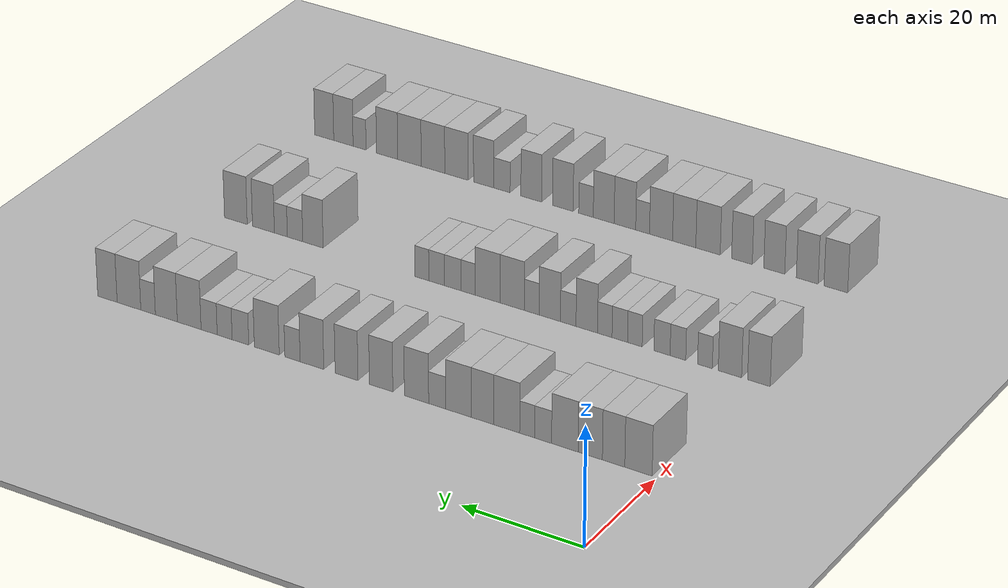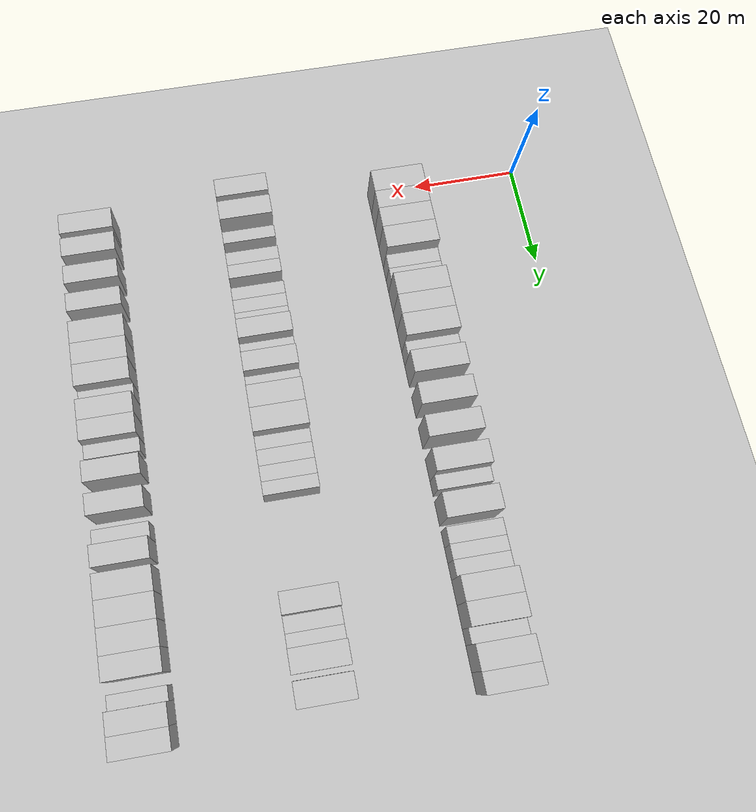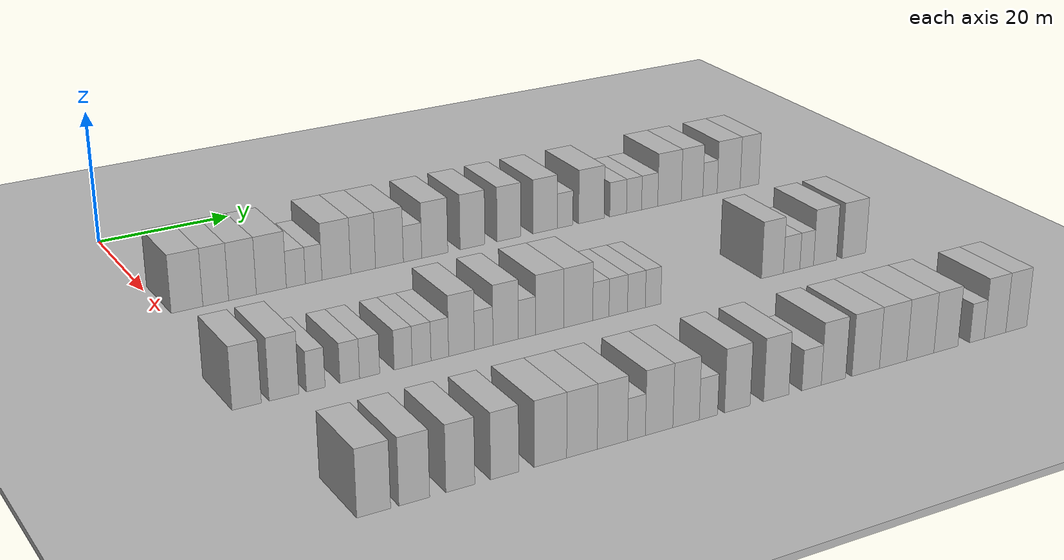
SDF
<sdf version="1.6">
 <world name="default">
  <include><name>ground_plane_1</name><uri>model://HANNAS_ground_plane</uri></include>
  <include>
   <name>ground_plane_2</name>
   <uri>model://HANNAS_ground_plane</uri>
   <pose>100 0 0  0 0 0</pose>
  </include>
  <model name="building_68">
   <static>1</static>
   <pose>25.0000 2.7188 0 0.000000 0.000000 0.000000</pose>
   <link name="link">
    <pose>0 0 4.50 0 0 0</pose>
    <collision name="collision"><geometry><box><size>10.0000 4.4867 9.0000</size></box></geometry></collision>
    <visual name="visual">
     <cast_shadows>0</cast_shadows>
     <geometry><box><size>10.0000 4.4867 9.0000</size></box></geometry>
     <material>
      <script>
       <uri>model://HANNAS_wall/materials/scripts</uri>
       <uri>model://HANNAS_wall/materials/textures</uri>
       <name>vrc/HANNAS_wall</name>
      </script>
     </material>
    </visual>
   </link>
  </model>
  <model name="building_69">
   <static>1</static>
   <pose>25.0000 6.8069 0 0.000000 0.000000 0.000000</pose>
   <link name="link">
    <pose>0 0 4.50 0 0 0</pose>
    <collision name="collision"><geometry><box><size>10.0000 3.6895 9.0000</size></box></geometry></collision>
    <visual name="visual">
     <cast_shadows>0</cast_shadows>
     <geometry><box><size>10.0000 3.6895 9.0000</size></box></geometry>
     <material>
      <script>
       <uri>model://HANNAS_wall/materials/scripts</uri>
       <uri>model://HANNAS_wall/materials/textures</uri>
       <name>vrc/HANNAS_wall</name>
      </script>
     </material>
    </visual>
   </link>
  </model>
  <model name="building_70">
   <static>1</static>
   <pose>25.0000 10.6622 0 0.000000 0.000000 0.000000</pose>
   <link name="link">
    <pose>0 0 4.50 0 0 0</pose>
    <collision name="collision"><geometry><box><size>10.0000 4.0211 9.0000</size></box></geometry></collision>
    <visual name="visual">
     <cast_shadows>0</cast_shadows>
     <geometry><box><size>10.0000 4.0211 9.0000</size></box></geometry>
     <material>
      <script>
       <uri>model://HANNAS_wall/materials/scripts</uri>
       <uri>model://HANNAS_wall/materials/textures</uri>
       <name>vrc/HANNAS_wall</name>
      </script>
     </material>
    </visual>
   </link>
  </model>
  <model name="building_71">
   <static>1</static>
   <pose>25.0000 14.8831 0 0.000000 0.000000 0.000000</pose>
   <link name="link">
    <pose>0 0 4.50 0 0 0</pose>
    <collision name="collision"><geometry><box><size>10.0000 4.4206 9.0000</size></box></geometry></collision>
    <visual name="visual">
     <cast_shadows>0</cast_shadows>
     <geometry><box><size>10.0000 4.4206 9.0000</size></box></geometry>
     <material>
      <script>
       <uri>model://HANNAS_wall/materials/scripts</uri>
       <uri>model://HANNAS_wall/materials/textures</uri>
       <name>vrc/HANNAS_wall</name>
      </script>
     </material>
    </visual>
   </link>
  </model>
  <model name="building_72">
   <static>1</static>
   <pose>25.0000 18.5226 0 0.000000 0.000000 0.000000</pose>
   <link name="link">
    <pose>0 0 3.00 0 0 0</pose>
    <collision name="collision"><geometry><box><size>10.0000 2.8583 6.0000</size></box></geometry></collision>
    <visual name="visual">
     <cast_shadows>0</cast_shadows>
     <geometry><box><size>10.0000 2.8583 6.0000</size></box></geometry>
     <material>
      <script>
       <uri>model://HANNAS_wall/materials/scripts</uri>
       <uri>model://HANNAS_wall/materials/textures</uri>
       <name>vrc/HANNAS_wall</name>
      </script>
     </material>
    </visual>
   </link>
  </model>
  <model name="building_73">
   <static>1</static>
   <pose>25.0000 21.1987 0 0.000000 0.000000 0.000000</pose>
   <link name="link">
    <pose>0 0 3.00 0 0 0</pose>
    <collision name="collision"><geometry><box><size>10.0000 2.4939 6.0000</size></box></geometry></collision>
    <visual name="visual">
     <cast_shadows>0</cast_shadows>
     <geometry><box><size>10.0000 2.4939 6.0000</size></box></geometry>
     <material>
      <script>
       <uri>model://HANNAS_wall/materials/scripts</uri>
       <uri>model://HANNAS_wall/materials/textures</uri>
       <name>vrc/HANNAS_wall</name>
      </script>
     </material>
    </visual>
   </link>
  </model>
  <model name="building_74">
   <static>1</static>
   <pose>25.0000 24.6305 0 0.000000 0.000000 0.000000</pose>
   <link name="link">
    <pose>0 0 4.50 0 0 0</pose>
    <collision name="collision"><geometry><box><size>10.0000 4.3699 9.0000</size></box></geometry></collision>
    <visual name="visual">
     <cast_shadows>0</cast_shadows>
     <geometry><box><size>10.0000 4.3699 9.0000</size></box></geometry>
     <material>
      <script>
       <uri>model://HANNAS_wall/materials/scripts</uri>
       <uri>model://HANNAS_wall/materials/textures</uri>
       <name>vrc/HANNAS_wall</name>
      </script>
     </material>
    </visual>
   </link>
  </model>
  <model name="building_75">
   <static>1</static>
   <pose>25.0000 28.7392 0 0.000000 0.000000 0.000000</pose>
   <link name="link">
    <pose>0 0 4.50 0 0 0</pose>
    <collision name="collision"><geometry><box><size>10.0000 3.8474 9.0000</size></box></geometry></collision>
    <visual name="visual">
     <cast_shadows>0</cast_shadows>
     <geometry><box><size>10.0000 3.8474 9.0000</size></box></geometry>
     <material>
      <script>
       <uri>model://HANNAS_wall/materials/scripts</uri>
       <uri>model://HANNAS_wall/materials/textures</uri>
       <name>vrc/HANNAS_wall</name>
      </script>
     </material>
    </visual>
   </link>
  </model>
  <model name="building_76">
   <static>1</static>
   <pose>25.0000 32.8448 0 0.000000 0.000000 0.000000</pose>
   <link name="link">
    <pose>0 0 4.50 0 0 0</pose>
    <collision name="collision"><geometry><box><size>10.0000 4.3639 9.0000</size></box></geometry></collision>
    <visual name="visual">
     <cast_shadows>0</cast_shadows>
     <geometry><box><size>10.0000 4.3639 9.0000</size></box></geometry>
     <material>
      <script>
       <uri>model://HANNAS_wall/materials/scripts</uri>
       <uri>model://HANNAS_wall/materials/textures</uri>
       <name>vrc/HANNAS_wall</name>
      </script>
     </material>
    </visual>
   </link>
  </model>
  <model name="building_77">
   <static>1</static>
   <pose>25.0000 36.4852 0 0.000000 0.000000 0.000000</pose>
   <link name="link">
    <pose>0 0 3.00 0 0 0</pose>
    <collision name="collision"><geometry><box><size>10.0000 2.9167 6.0000</size></box></geometry></collision>
    <visual name="visual">
     <cast_shadows>0</cast_shadows>
     <geometry><box><size>10.0000 2.9167 6.0000</size></box></geometry>
     <material>
      <script>
       <uri>model://HANNAS_wall/materials/scripts</uri>
       <uri>model://HANNAS_wall/materials/textures</uri>
       <name>vrc/HANNAS_wall</name>
      </script>
     </material>
    </visual>
   </link>
  </model>
  <model name="building_78">
   <static>1</static>
   <pose>25.0000 40.0395 0 0.000000 0.000000 0.000000</pose>
   <link name="link">
    <pose>0 0 4.50 0 0 0</pose>
    <collision name="collision"><geometry><box><size>10.0000 4.1920 9.0000</size></box></geometry></collision>
    <visual name="visual">
     <cast_shadows>0</cast_shadows>
     <geometry><box><size>10.0000 4.1920 9.0000</size></box></geometry>
     <material>
      <script>
       <uri>model://HANNAS_wall/materials/scripts</uri>
       <uri>model://HANNAS_wall/materials/textures</uri>
       <name>vrc/HANNAS_wall</name>
      </script>
     </material>
    </visual>
   </link>
  </model>
  <model name="building_79">
   <static>1</static>
   <pose>25.0000 46.1727 0 0.000000 0.000000 0.000000</pose>
   <link name="link">
    <pose>0 0 4.50 0 0 0</pose>
    <collision name="collision"><geometry><box><size>10.0000 4.0743 9.0000</size></box></geometry></collision>
    <visual name="visual">
     <cast_shadows>0</cast_shadows>
     <geometry><box><size>10.0000 4.0743 9.0000</size></box></geometry>
     <material>
      <script>
       <uri>model://HANNAS_wall/materials/scripts</uri>
       <uri>model://HANNAS_wall/materials/textures</uri>
       <name>vrc/HANNAS_wall</name>
      </script>
     </material>
    </visual>
   </link>
  </model>
  <model name="building_80">
   <static>1</static>
   <pose>25.0000 52.2168 0 0.000000 0.000000 0.000000</pose>
   <link name="link">
    <pose>0 0 4.50 0 0 0</pose>
    <collision name="collision"><geometry><box><size>10.0000 4.0139 9.0000</size></box></geometry></collision>
    <visual name="visual">
     <cast_shadows>0</cast_shadows>
     <geometry><box><size>10.0000 4.0139 9.0000</size></box></geometry>
     <material>
      <script>
       <uri>model://HANNAS_wall/materials/scripts</uri>
       <uri>model://HANNAS_wall/materials/textures</uri>
       <name>vrc/HANNAS_wall</name>
      </script>
     </material>
    </visual>
   </link>
  </model>
  <model name="building_81">
   <static>1</static>
   <pose>25.0000 58.3183 0 0.000000 0.000000 0.000000</pose>
   <link name="link">
    <pose>0 0 4.50 0 0 0</pose>
    <collision name="collision"><geometry><box><size>10.0000 4.1893 9.0000</size></box></geometry></collision>
    <visual name="visual">
     <cast_shadows>0</cast_shadows>
     <geometry><box><size>10.0000 4.1893 9.0000</size></box></geometry>
     <material>
      <script>
       <uri>model://HANNAS_wall/materials/scripts</uri>
       <uri>model://HANNAS_wall/materials/textures</uri>
       <name>vrc/HANNAS_wall</name>
      </script>
     </material>
    </visual>
   </link>
  </model>
  <model name="building_82">
   <static>1</static>
   <pose>25.0000 61.7680 0 0.000000 0.000000 0.000000</pose>
   <link name="link">
    <pose>0 0 3.00 0 0 0</pose>
    <collision name="collision"><geometry><box><size>10.0000 2.7101 6.0000</size></box></geometry></collision>
    <visual name="visual">
     <cast_shadows>0</cast_shadows>
     <geometry><box><size>10.0000 2.7101 6.0000</size></box></geometry>
     <material>
      <script>
       <uri>model://HANNAS_wall/materials/scripts</uri>
       <uri>model://HANNAS_wall/materials/textures</uri>
       <name>vrc/HANNAS_wall</name>
      </script>
     </material>
    </visual>
   </link>
  </model>
  <model name="building_83">
   <static>1</static>
   <pose>25.0000 66.3542 0 0.000000 0.000000 0.000000</pose>
   <link name="link">
    <pose>0 0 4.50 0 0 0</pose>
    <collision name="collision"><geometry><box><size>10.0000 4.4623 9.0000</size></box></geometry></collision>
    <visual name="visual">
     <cast_shadows>0</cast_shadows>
     <geometry><box><size>10.0000 4.4623 9.0000</size></box></geometry>
     <material>
      <script>
       <uri>model://HANNAS_wall/materials/scripts</uri>
       <uri>model://HANNAS_wall/materials/textures</uri>
       <name>vrc/HANNAS_wall</name>
      </script>
     </material>
    </visual>
   </link>
  </model>
  <model name="building_84">
   <static>1</static>
   <pose>25.0000 71.0822 0 0.000000 0.000000 0.000000</pose>
   <link name="link">
    <pose>0 0 3.00 0 0 0</pose>
    <collision name="collision"><geometry><box><size>10.0000 2.9936 6.0000</size></box></geometry></collision>
    <visual name="visual">
     <cast_shadows>0</cast_shadows>
     <geometry><box><size>10.0000 2.9936 6.0000</size></box></geometry>
     <material>
      <script>
       <uri>model://HANNAS_wall/materials/scripts</uri>
       <uri>model://HANNAS_wall/materials/textures</uri>
       <name>vrc/HANNAS_wall</name>
      </script>
     </material>
    </visual>
   </link>
  </model>
  <model name="building_85">
   <static>1</static>
   <pose>25.0000 73.9294 0 0.000000 0.000000 0.000000</pose>
   <link name="link">
    <pose>0 0 3.00 0 0 0</pose>
    <collision name="collision"><geometry><box><size>10.0000 2.7008 6.0000</size></box></geometry></collision>
    <visual name="visual">
     <cast_shadows>0</cast_shadows>
     <geometry><box><size>10.0000 2.7008 6.0000</size></box></geometry>
     <material>
      <script>
       <uri>model://HANNAS_wall/materials/scripts</uri>
       <uri>model://HANNAS_wall/materials/textures</uri>
       <name>vrc/HANNAS_wall</name>
      </script>
     </material>
    </visual>
   </link>
  </model>
  <model name="building_86">
   <static>1</static>
   <pose>25.0000 76.7433 0 0.000000 0.000000 0.000000</pose>
   <link name="link">
    <pose>0 0 3.00 0 0 0</pose>
    <collision name="collision"><geometry><box><size>10.0000 2.9270 6.0000</size></box></geometry></collision>
    <visual name="visual">
     <cast_shadows>0</cast_shadows>
     <geometry><box><size>10.0000 2.9270 6.0000</size></box></geometry>
     <material>
      <script>
       <uri>model://HANNAS_wall/materials/scripts</uri>
       <uri>model://HANNAS_wall/materials/textures</uri>
       <name>vrc/HANNAS_wall</name>
      </script>
     </material>
    </visual>
   </link>
  </model>
  <model name="building_87">
   <static>1</static>
   <pose>25.0000 80.3713 0 0.000000 0.000000 0.000000</pose>
   <link name="link">
    <pose>0 0 4.50 0 0 0</pose>
    <collision name="collision"><geometry><box><size>10.0000 4.3292 9.0000</size></box></geometry></collision>
    <visual name="visual">
     <cast_shadows>0</cast_shadows>
     <geometry><box><size>10.0000 4.3292 9.0000</size></box></geometry>
     <material>
      <script>
       <uri>model://HANNAS_wall/materials/scripts</uri>
       <uri>model://HANNAS_wall/materials/textures</uri>
       <name>vrc/HANNAS_wall</name>
      </script>
     </material>
    </visual>
   </link>
  </model>
  <model name="building_88">
   <static>1</static>
   <pose>25.0000 84.5508 0 0.000000 0.000000 0.000000</pose>
   <link name="link">
    <pose>0 0 4.50 0 0 0</pose>
    <collision name="collision"><geometry><box><size>10.0000 4.0297 9.0000</size></box></geometry></collision>
    <visual name="visual">
     <cast_shadows>0</cast_shadows>
     <geometry><box><size>10.0000 4.0297 9.0000</size></box></geometry>
     <material>
      <script>
       <uri>model://HANNAS_wall/materials/scripts</uri>
       <uri>model://HANNAS_wall/materials/textures</uri>
       <name>vrc/HANNAS_wall</name>
      </script>
     </material>
    </visual>
   </link>
  </model>
  <model name="building_89">
   <static>1</static>
   <pose>25.0000 87.9075 0 0.000000 0.000000 0.000000</pose>
   <link name="link">
    <pose>0 0 3.00 0 0 0</pose>
    <collision name="collision"><geometry><box><size>10.0000 2.6836 6.0000</size></box></geometry></collision>
    <visual name="visual">
     <cast_shadows>0</cast_shadows>
     <geometry><box><size>10.0000 2.6836 6.0000</size></box></geometry>
     <material>
      <script>
       <uri>model://HANNAS_wall/materials/scripts</uri>
       <uri>model://HANNAS_wall/materials/textures</uri>
       <name>vrc/HANNAS_wall</name>
      </script>
     </material>
    </visual>
   </link>
  </model>
  <model name="building_90">
   <static>1</static>
   <pose>25.0000 91.4385 0 0.000000 0.000000 0.000000</pose>
   <link name="link">
    <pose>0 0 4.50 0 0 0</pose>
    <collision name="collision"><geometry><box><size>10.0000 4.3784 9.0000</size></box></geometry></collision>
    <visual name="visual">
     <cast_shadows>0</cast_shadows>
     <geometry><box><size>10.0000 4.3784 9.0000</size></box></geometry>
     <material>
      <script>
       <uri>model://HANNAS_wall/materials/scripts</uri>
       <uri>model://HANNAS_wall/materials/textures</uri>
       <name>vrc/HANNAS_wall</name>
      </script>
     </material>
    </visual>
   </link>
  </model>
  <model name="building_91">
   <static>1</static>
   <pose>25.0000 95.4313 0 0.000000 0.000000 0.000000</pose>
   <link name="link">
    <pose>0 0 4.50 0 0 0</pose>
    <collision name="collision"><geometry><box><size>10.0000 3.6072 9.0000</size></box></geometry></collision>
    <visual name="visual">
     <cast_shadows>0</cast_shadows>
     <geometry><box><size>10.0000 3.6072 9.0000</size></box></geometry>
     <material>
      <script>
       <uri>model://HANNAS_wall/materials/scripts</uri>
       <uri>model://HANNAS_wall/materials/textures</uri>
       <name>vrc/HANNAS_wall</name>
      </script>
     </material>
    </visual>
   </link>
  </model>
  <model name="building_210">
   <static>1</static>
   <pose>55.0000 -0.6338 0 0.000000 0.000000 0.000000</pose>
   <link name="link">
    <pose>0 0 4.50 0 0 0</pose>
    <collision name="collision"><geometry><box><size>10.0000 3.7791 9.0000</size></box></geometry></collision>
    <visual name="visual">
     <cast_shadows>0</cast_shadows>
     <geometry><box><size>10.0000 3.7791 9.0000</size></box></geometry>
     <material>
      <script>
       <uri>model://HANNAS_wall/materials/scripts</uri>
       <uri>model://HANNAS_wall/materials/textures</uri>
       <name>vrc/HANNAS_wall</name>
      </script>
     </material>
    </visual>
   </link>
  </model>
  <model name="building_211">
   <static>1</static>
   <pose>55.0000 4.2145 0 0.000000 0.000000 0.000000</pose>
   <link name="link">
    <pose>0 0 4.50 0 0 0</pose>
    <collision name="collision"><geometry><box><size>10.0000 3.9175 9.0000</size></box></geometry></collision>
    <visual name="visual">
     <cast_shadows>0</cast_shadows>
     <geometry><box><size>10.0000 3.9175 9.0000</size></box></geometry>
     <material>
      <script>
       <uri>model://HANNAS_wall/materials/scripts</uri>
       <uri>model://HANNAS_wall/materials/textures</uri>
       <name>vrc/HANNAS_wall</name>
      </script>
     </material>
    </visual>
   </link>
  </model>
  <model name="building_212">
   <static>1</static>
   <pose>55.0000 8.4221 0 0.000000 0.000000 0.000000</pose>
   <link name="link">
    <pose>0 0 3.00 0 0 0</pose>
    <collision name="collision"><geometry><box><size>10.0000 2.4978 6.0000</size></box></geometry></collision>
    <visual name="visual">
     <cast_shadows>0</cast_shadows>
     <geometry><box><size>10.0000 2.4978 6.0000</size></box></geometry>
     <material>
      <script>
       <uri>model://HANNAS_wall/materials/scripts</uri>
       <uri>model://HANNAS_wall/materials/textures</uri>
       <name>vrc/HANNAS_wall</name>
      </script>
     </material>
    </visual>
   </link>
  </model>
  <model name="building_213">
   <static>1</static>
   <pose>55.0000 13.0031 0 0.000000 0.000000 0.000000</pose>
   <link name="link">
    <pose>0 0 3.00 0 0 0</pose>
    <collision name="collision"><geometry><box><size>10.0000 2.6643 6.0000</size></box></geometry></collision>
    <visual name="visual">
     <cast_shadows>0</cast_shadows>
     <geometry><box><size>10.0000 2.6643 6.0000</size></box></geometry>
     <material>
      <script>
       <uri>model://HANNAS_wall/materials/scripts</uri>
       <uri>model://HANNAS_wall/materials/textures</uri>
       <name>vrc/HANNAS_wall</name>
      </script>
     </material>
    </visual>
   </link>
  </model>
  <model name="building_214">
   <static>1</static>
   <pose>55.0000 15.7179 0 0.000000 0.000000 0.000000</pose>
   <link name="link">
    <pose>0 0 3.00 0 0 0</pose>
    <collision name="collision"><geometry><box><size>10.0000 2.7653 6.0000</size></box></geometry></collision>
    <visual name="visual">
     <cast_shadows>0</cast_shadows>
     <geometry><box><size>10.0000 2.7653 6.0000</size></box></geometry>
     <material>
      <script>
       <uri>model://HANNAS_wall/materials/scripts</uri>
       <uri>model://HANNAS_wall/materials/textures</uri>
       <name>vrc/HANNAS_wall</name>
      </script>
     </material>
    </visual>
   </link>
  </model>
  <model name="building_215">
   <static>1</static>
   <pose>55.0000 20.3612 0 0.000000 0.000000 0.000000</pose>
   <link name="link">
    <pose>0 0 3.00 0 0 0</pose>
    <collision name="collision"><geometry><box><size>10.0000 2.5212 6.0000</size></box></geometry></collision>
    <visual name="visual">
     <cast_shadows>0</cast_shadows>
     <geometry><box><size>10.0000 2.5212 6.0000</size></box></geometry>
     <material>
      <script>
       <uri>model://HANNAS_wall/materials/scripts</uri>
       <uri>model://HANNAS_wall/materials/textures</uri>
       <name>vrc/HANNAS_wall</name>
      </script>
     </material>
    </visual>
   </link>
  </model>
  <model name="building_216">
   <static>1</static>
   <pose>55.0000 22.9540 0 0.000000 0.000000 0.000000</pose>
   <link name="link">
    <pose>0 0 3.00 0 0 0</pose>
    <collision name="collision"><geometry><box><size>10.0000 2.6646 6.0000</size></box></geometry></collision>
    <visual name="visual">
     <cast_shadows>0</cast_shadows>
     <geometry><box><size>10.0000 2.6646 6.0000</size></box></geometry>
     <material>
      <script>
       <uri>model://HANNAS_wall/materials/scripts</uri>
       <uri>model://HANNAS_wall/materials/textures</uri>
       <name>vrc/HANNAS_wall</name>
      </script>
     </material>
    </visual>
   </link>
  </model>
  <model name="building_217">
   <static>1</static>
   <pose>55.0000 25.5441 0 0.000000 0.000000 0.000000</pose>
   <link name="link">
    <pose>0 0 3.00 0 0 0</pose>
    <collision name="collision"><geometry><box><size>10.0000 2.5155 6.0000</size></box></geometry></collision>
    <visual name="visual">
     <cast_shadows>0</cast_shadows>
     <geometry><box><size>10.0000 2.5155 6.0000</size></box></geometry>
     <material>
      <script>
       <uri>model://HANNAS_wall/materials/scripts</uri>
       <uri>model://HANNAS_wall/materials/textures</uri>
       <name>vrc/HANNAS_wall</name>
      </script>
     </material>
    </visual>
   </link>
  </model>
  <model name="building_218">
   <static>1</static>
   <pose>55.0000 28.6669 0 0.000000 0.000000 0.000000</pose>
   <link name="link">
    <pose>0 0 4.50 0 0 0</pose>
    <collision name="collision"><geometry><box><size>10.0000 3.7302 9.0000</size></box></geometry></collision>
    <visual name="visual">
     <cast_shadows>0</cast_shadows>
     <geometry><box><size>10.0000 3.7302 9.0000</size></box></geometry>
     <material>
      <script>
       <uri>model://HANNAS_wall/materials/scripts</uri>
       <uri>model://HANNAS_wall/materials/textures</uri>
       <name>vrc/HANNAS_wall</name>
      </script>
     </material>
    </visual>
   </link>
  </model>
  <model name="building_219">
   <static>1</static>
   <pose>55.0000 31.8866 0 0.000000 0.000000 0.000000</pose>
   <link name="link">
    <pose>0 0 3.00 0 0 0</pose>
    <collision name="collision"><geometry><box><size>10.0000 2.7093 6.0000</size></box></geometry></collision>
    <visual name="visual">
     <cast_shadows>0</cast_shadows>
     <geometry><box><size>10.0000 2.7093 6.0000</size></box></geometry>
     <material>
      <script>
       <uri>model://HANNAS_wall/materials/scripts</uri>
       <uri>model://HANNAS_wall/materials/textures</uri>
       <name>vrc/HANNAS_wall</name>
      </script>
     </material>
    </visual>
   </link>
  </model>
  <model name="building_220">
   <static>1</static>
   <pose>55.0000 35.1003 0 0.000000 0.000000 0.000000</pose>
   <link name="link">
    <pose>0 0 4.50 0 0 0</pose>
    <collision name="collision"><geometry><box><size>10.0000 3.7181 9.0000</size></box></geometry></collision>
    <visual name="visual">
     <cast_shadows>0</cast_shadows>
     <geometry><box><size>10.0000 3.7181 9.0000</size></box></geometry>
     <material>
      <script>
       <uri>model://HANNAS_wall/materials/scripts</uri>
       <uri>model://HANNAS_wall/materials/textures</uri>
       <name>vrc/HANNAS_wall</name>
      </script>
     </material>
    </visual>
   </link>
  </model>
  <model name="building_221">
   <static>1</static>
   <pose>55.0000 38.2789 0 0.000000 0.000000 0.000000</pose>
   <link name="link">
    <pose>0 0 3.00 0 0 0</pose>
    <collision name="collision"><geometry><box><size>10.0000 2.6392 6.0000</size></box></geometry></collision>
    <visual name="visual">
     <cast_shadows>0</cast_shadows>
     <geometry><box><size>10.0000 2.6392 6.0000</size></box></geometry>
     <material>
      <script>
       <uri>model://HANNAS_wall/materials/scripts</uri>
       <uri>model://HANNAS_wall/materials/textures</uri>
       <name>vrc/HANNAS_wall</name>
      </script>
     </material>
    </visual>
   </link>
  </model>
  <model name="building_222">
   <static>1</static>
   <pose>55.0000 41.7127 0 0.000000 0.000000 0.000000</pose>
   <link name="link">
    <pose>0 0 4.50 0 0 0</pose>
    <collision name="collision"><geometry><box><size>10.0000 4.2284 9.0000</size></box></geometry></collision>
    <visual name="visual">
     <cast_shadows>0</cast_shadows>
     <geometry><box><size>10.0000 4.2284 9.0000</size></box></geometry>
     <material>
      <script>
       <uri>model://HANNAS_wall/materials/scripts</uri>
       <uri>model://HANNAS_wall/materials/textures</uri>
       <name>vrc/HANNAS_wall</name>
      </script>
     </material>
    </visual>
   </link>
  </model>
  <model name="building_223">
   <static>1</static>
   <pose>55.0000 46.0672 0 0.000000 0.000000 0.000000</pose>
   <link name="link">
    <pose>0 0 4.50 0 0 0</pose>
    <collision name="collision"><geometry><box><size>10.0000 4.4806 9.0000</size></box></geometry></collision>
    <visual name="visual">
     <cast_shadows>0</cast_shadows>
     <geometry><box><size>10.0000 4.4806 9.0000</size></box></geometry>
     <material>
      <script>
       <uri>model://HANNAS_wall/materials/scripts</uri>
       <uri>model://HANNAS_wall/materials/textures</uri>
       <name>vrc/HANNAS_wall</name>
      </script>
     </material>
    </visual>
   </link>
  </model>
  <model name="building_224">
   <static>1</static>
   <pose>55.0000 49.5771 0 0.000000 0.000000 0.000000</pose>
   <link name="link">
    <pose>0 0 3.00 0 0 0</pose>
    <collision name="collision"><geometry><box><size>10.0000 2.5391 6.0000</size></box></geometry></collision>
    <visual name="visual">
     <cast_shadows>0</cast_shadows>
     <geometry><box><size>10.0000 2.5391 6.0000</size></box></geometry>
     <material>
      <script>
       <uri>model://HANNAS_wall/materials/scripts</uri>
       <uri>model://HANNAS_wall/materials/textures</uri>
       <name>vrc/HANNAS_wall</name>
      </script>
     </material>
    </visual>
   </link>
  </model>
  <model name="building_225">
   <static>1</static>
   <pose>55.0000 52.3062 0 0.000000 0.000000 0.000000</pose>
   <link name="link">
    <pose>0 0 3.00 0 0 0</pose>
    <collision name="collision"><geometry><box><size>10.0000 2.9191 6.0000</size></box></geometry></collision>
    <visual name="visual">
     <cast_shadows>0</cast_shadows>
     <geometry><box><size>10.0000 2.9191 6.0000</size></box></geometry>
     <material>
      <script>
       <uri>model://HANNAS_wall/materials/scripts</uri>
       <uri>model://HANNAS_wall/materials/textures</uri>
       <name>vrc/HANNAS_wall</name>
      </script>
     </material>
    </visual>
   </link>
  </model>
  <model name="building_226">
   <static>1</static>
   <pose>55.0000 55.1852 0 0.000000 0.000000 0.000000</pose>
   <link name="link">
    <pose>0 0 3.00 0 0 0</pose>
    <collision name="collision"><geometry><box><size>10.0000 2.8389 6.0000</size></box></geometry></collision>
    <visual name="visual">
     <cast_shadows>0</cast_shadows>
     <geometry><box><size>10.0000 2.8389 6.0000</size></box></geometry>
     <material>
      <script>
       <uri>model://HANNAS_wall/materials/scripts</uri>
       <uri>model://HANNAS_wall/materials/textures</uri>
       <name>vrc/HANNAS_wall</name>
      </script>
     </material>
    </visual>
   </link>
  </model>
  <model name="building_227">
   <static>1</static>
   <pose>55.0000 57.8537 0 0.000000 0.000000 0.000000</pose>
   <link name="link">
    <pose>0 0 3.00 0 0 0</pose>
    <collision name="collision"><geometry><box><size>10.0000 2.4982 6.0000</size></box></geometry></collision>
    <visual name="visual">
     <cast_shadows>0</cast_shadows>
     <geometry><box><size>10.0000 2.4982 6.0000</size></box></geometry>
     <material>
      <script>
       <uri>model://HANNAS_wall/materials/scripts</uri>
       <uri>model://HANNAS_wall/materials/textures</uri>
       <name>vrc/HANNAS_wall</name>
      </script>
     </material>
    </visual>
   </link>
  </model>
  <model name="building_228">
   <static>1</static>
   <pose>55.0000 77.7817 0 0.000000 0.000000 0.000000</pose>
   <link name="link">
    <pose>0 0 4.50 0 0 0</pose>
    <collision name="collision"><geometry><box><size>10.0000 3.7859 9.0000</size></box></geometry></collision>
    <visual name="visual">
     <cast_shadows>0</cast_shadows>
     <geometry><box><size>10.0000 3.7859 9.0000</size></box></geometry>
     <material>
      <script>
       <uri>model://HANNAS_wall/materials/scripts</uri>
       <uri>model://HANNAS_wall/materials/textures</uri>
       <name>vrc/HANNAS_wall</name>
      </script>
     </material>
    </visual>
   </link>
  </model>
  <model name="building_229">
   <static>1</static>
   <pose>55.0000 81.1114 0 0.000000 0.000000 0.000000</pose>
   <link name="link">
    <pose>0 0 3.00 0 0 0</pose>
    <collision name="collision"><geometry><box><size>10.0000 2.8735 6.0000</size></box></geometry></collision>
    <visual name="visual">
     <cast_shadows>0</cast_shadows>
     <geometry><box><size>10.0000 2.8735 6.0000</size></box></geometry>
     <material>
      <script>
       <uri>model://HANNAS_wall/materials/scripts</uri>
       <uri>model://HANNAS_wall/materials/textures</uri>
       <name>vrc/HANNAS_wall</name>
      </script>
     </material>
    </visual>
   </link>
  </model>
  <model name="building_230">
   <static>1</static>
   <pose>55.0000 83.7545 0 0.000000 0.000000 0.000000</pose>
   <link name="link">
    <pose>0 0 3.00 0 0 0</pose>
    <collision name="collision"><geometry><box><size>10.0000 2.4127 6.0000</size></box></geometry></collision>
    <visual name="visual">
     <cast_shadows>0</cast_shadows>
     <geometry><box><size>10.0000 2.4127 6.0000</size></box></geometry>
     <material>
      <script>
       <uri>model://HANNAS_wall/materials/scripts</uri>
       <uri>model://HANNAS_wall/materials/textures</uri>
       <name>vrc/HANNAS_wall</name>
      </script>
     </material>
    </visual>
   </link>
  </model>
  <model name="building_231">
   <static>1</static>
   <pose>55.0000 87.0142 0 0.000000 0.000000 0.000000</pose>
   <link name="link">
    <pose>0 0 4.50 0 0 0</pose>
    <collision name="collision"><geometry><box><size>10.0000 4.1068 9.0000</size></box></geometry></collision>
    <visual name="visual">
     <cast_shadows>0</cast_shadows>
     <geometry><box><size>10.0000 4.1068 9.0000</size></box></geometry>
     <material>
      <script>
       <uri>model://HANNAS_wall/materials/scripts</uri>
       <uri>model://HANNAS_wall/materials/textures</uri>
       <name>vrc/HANNAS_wall</name>
      </script>
     </material>
    </visual>
   </link>
  </model>
  <model name="building_232">
   <static>1</static>
   <pose>55.0000 92.2040 0 0.000000 0.000000 0.000000</pose>
   <link name="link">
    <pose>0 0 4.50 0 0 0</pose>
    <collision name="collision"><geometry><box><size>10.0000 4.2727 9.0000</size></box></geometry></collision>
    <visual name="visual">
     <cast_shadows>0</cast_shadows>
     <geometry><box><size>10.0000 4.2727 9.0000</size></box></geometry>
     <material>
      <script>
       <uri>model://HANNAS_wall/materials/scripts</uri>
       <uri>model://HANNAS_wall/materials/textures</uri>
       <name>vrc/HANNAS_wall</name>
      </script>
     </material>
    </visual>
   </link>
  </model>
  <model name="building_348">
   <static>1</static>
   <pose>85.0000 2.1756 0 0.000000 0.000000 0.000000</pose>
   <link name="link">
    <pose>0 0 4.50 0 0 0</pose>
    <collision name="collision"><geometry><box><size>10.0000 4.0693 9.0000</size></box></geometry></collision>
    <visual name="visual">
     <cast_shadows>0</cast_shadows>
     <geometry><box><size>10.0000 4.0693 9.0000</size></box></geometry>
     <material>
      <script>
       <uri>model://HANNAS_wall/materials/scripts</uri>
       <uri>model://HANNAS_wall/materials/textures</uri>
       <name>vrc/HANNAS_wall</name>
      </script>
     </material>
    </visual>
   </link>
  </model>
  <model name="building_349">
   <static>1</static>
   <pose>85.0000 7.0966 0 0.000000 0.000000 0.000000</pose>
   <link name="link">
    <pose>0 0 4.50 0 0 0</pose>
    <collision name="collision"><geometry><box><size>10.0000 3.7727 9.0000</size></box></geometry></collision>
    <visual name="visual">
     <cast_shadows>0</cast_shadows>
     <geometry><box><size>10.0000 3.7727 9.0000</size></box></geometry>
     <material>
      <script>
       <uri>model://HANNAS_wall/materials/scripts</uri>
       <uri>model://HANNAS_wall/materials/textures</uri>
       <name>vrc/HANNAS_wall</name>
      </script>
     </material>
    </visual>
   </link>
  </model>
  <model name="building_350">
   <static>1</static>
   <pose>85.0000 12.8025 0 0.000000 0.000000 0.000000</pose>
   <link name="link">
    <pose>0 0 4.50 0 0 0</pose>
    <collision name="collision"><geometry><box><size>10.0000 3.6392 9.0000</size></box></geometry></collision>
    <visual name="visual">
     <cast_shadows>0</cast_shadows>
     <geometry><box><size>10.0000 3.6392 9.0000</size></box></geometry>
     <material>
      <script>
       <uri>model://HANNAS_wall/materials/scripts</uri>
       <uri>model://HANNAS_wall/materials/textures</uri>
       <name>vrc/HANNAS_wall</name>
      </script>
     </material>
    </visual>
   </link>
  </model>
  <model name="building_351">
   <static>1</static>
   <pose>85.0000 18.4324 0 0.000000 0.000000 0.000000</pose>
   <link name="link">
    <pose>0 0 4.50 0 0 0</pose>
    <collision name="collision"><geometry><box><size>10.0000 3.6205 9.0000</size></box></geometry></collision>
    <visual name="visual">
     <cast_shadows>0</cast_shadows>
     <geometry><box><size>10.0000 3.6205 9.0000</size></box></geometry>
     <material>
      <script>
       <uri>model://HANNAS_wall/materials/scripts</uri>
       <uri>model://HANNAS_wall/materials/textures</uri>
       <name>vrc/HANNAS_wall</name>
      </script>
     </material>
    </visual>
   </link>
  </model>
  <model name="building_352">
   <static>1</static>
   <pose>85.0000 24.3952 0 0.000000 0.000000 0.000000</pose>
   <link name="link">
    <pose>0 0 4.50 0 0 0</pose>
    <collision name="collision"><geometry><box><size>10.0000 4.3051 9.0000</size></box></geometry></collision>
    <visual name="visual">
     <cast_shadows>0</cast_shadows>
     <geometry><box><size>10.0000 4.3051 9.0000</size></box></geometry>
     <material>
      <script>
       <uri>model://HANNAS_wall/materials/scripts</uri>
       <uri>model://HANNAS_wall/materials/textures</uri>
       <name>vrc/HANNAS_wall</name>
      </script>
     </material>
    </visual>
   </link>
  </model>
  <model name="building_353">
   <static>1</static>
   <pose>85.0000 28.6072 0 0.000000 0.000000 0.000000</pose>
   <link name="link">
    <pose>0 0 4.50 0 0 0</pose>
    <collision name="collision"><geometry><box><size>10.0000 4.1190 9.0000</size></box></geometry></collision>
    <visual name="visual">
     <cast_shadows>0</cast_shadows>
     <geometry><box><size>10.0000 4.1190 9.0000</size></box></geometry>
     <material>
      <script>
       <uri>model://HANNAS_wall/materials/scripts</uri>
       <uri>model://HANNAS_wall/materials/textures</uri>
       <name>vrc/HANNAS_wall</name>
      </script>
     </material>
    </visual>
   </link>
  </model>
  <model name="building_354">
   <static>1</static>
   <pose>85.0000 32.7272 0 0.000000 0.000000 0.000000</pose>
   <link name="link">
    <pose>0 0 4.50 0 0 0</pose>
    <collision name="collision"><geometry><box><size>10.0000 4.1209 9.0000</size></box></geometry></collision>
    <visual name="visual">
     <cast_shadows>0</cast_shadows>
     <geometry><box><size>10.0000 4.1209 9.0000</size></box></geometry>
     <material>
      <script>
       <uri>model://HANNAS_wall/materials/scripts</uri>
       <uri>model://HANNAS_wall/materials/textures</uri>
       <name>vrc/HANNAS_wall</name>
      </script>
     </material>
    </visual>
   </link>
  </model>
  <model name="building_355">
   <static>1</static>
   <pose>85.0000 36.0224 0 0.000000 0.000000 0.000000</pose>
   <link name="link">
    <pose>0 0 3.00 0 0 0</pose>
    <collision name="collision"><geometry><box><size>10.0000 2.4696 6.0000</size></box></geometry></collision>
    <visual name="visual">
     <cast_shadows>0</cast_shadows>
     <geometry><box><size>10.0000 2.4696 6.0000</size></box></geometry>
     <material>
      <script>
       <uri>model://HANNAS_wall/materials/scripts</uri>
       <uri>model://HANNAS_wall/materials/textures</uri>
       <name>vrc/HANNAS_wall</name>
      </script>
     </material>
    </visual>
   </link>
  </model>
  <model name="building_356">
   <static>1</static>
   <pose>85.0000 39.1944 0 0.000000 0.000000 0.000000</pose>
   <link name="link">
    <pose>0 0 4.50 0 0 0</pose>
    <collision name="collision"><geometry><box><size>10.0000 3.8744 9.0000</size></box></geometry></collision>
    <visual name="visual">
     <cast_shadows>0</cast_shadows>
     <geometry><box><size>10.0000 3.8744 9.0000</size></box></geometry>
     <material>
      <script>
       <uri>model://HANNAS_wall/materials/scripts</uri>
       <uri>model://HANNAS_wall/materials/textures</uri>
       <name>vrc/HANNAS_wall</name>
      </script>
     </material>
    </visual>
   </link>
  </model>
  <model name="building_357">
   <static>1</static>
   <pose>85.0000 43.0172 0 0.000000 0.000000 0.000000</pose>
   <link name="link">
    <pose>0 0 4.50 0 0 0</pose>
    <collision name="collision"><geometry><box><size>10.0000 3.7713 9.0000</size></box></geometry></collision>
    <visual name="visual">
     <cast_shadows>0</cast_shadows>
     <geometry><box><size>10.0000 3.7713 9.0000</size></box></geometry>
     <material>
      <script>
       <uri>model://HANNAS_wall/materials/scripts</uri>
       <uri>model://HANNAS_wall/materials/textures</uri>
       <name>vrc/HANNAS_wall</name>
      </script>
     </material>
    </visual>
   </link>
  </model>
  <model name="building_358">
   <static>1</static>
   <pose>85.0000 46.2272 0 0.000000 0.000000 0.000000</pose>
   <link name="link">
    <pose>0 0 3.00 0 0 0</pose>
    <collision name="collision"><geometry><box><size>10.0000 2.6486 6.0000</size></box></geometry></collision>
    <visual name="visual">
     <cast_shadows>0</cast_shadows>
     <geometry><box><size>10.0000 2.6486 6.0000</size></box></geometry>
     <material>
      <script>
       <uri>model://HANNAS_wall/materials/scripts</uri>
       <uri>model://HANNAS_wall/materials/textures</uri>
       <name>vrc/HANNAS_wall</name>
      </script>
     </material>
    </visual>
   </link>
  </model>
  <model name="building_359">
   <static>1</static>
   <pose>85.0000 50.4416 0 0.000000 0.000000 0.000000</pose>
   <link name="link">
    <pose>0 0 4.50 0 0 0</pose>
    <collision name="collision"><geometry><box><size>10.0000 3.7803 9.0000</size></box></geometry></collision>
    <visual name="visual">
     <cast_shadows>0</cast_shadows>
     <geometry><box><size>10.0000 3.7803 9.0000</size></box></geometry>
     <material>
      <script>
       <uri>model://HANNAS_wall/materials/scripts</uri>
       <uri>model://HANNAS_wall/materials/textures</uri>
       <name>vrc/HANNAS_wall</name>
      </script>
     </material>
    </visual>
   </link>
  </model>
  <model name="building_360">
   <static>1</static>
   <pose>85.0000 56.2321 0 0.000000 0.000000 0.000000</pose>
   <link name="link">
    <pose>0 0 4.50 0 0 0</pose>
    <collision name="collision"><geometry><box><size>10.0000 3.8008 9.0000</size></box></geometry></collision>
    <visual name="visual">
     <cast_shadows>0</cast_shadows>
     <geometry><box><size>10.0000 3.8008 9.0000</size></box></geometry>
     <material>
      <script>
       <uri>model://HANNAS_wall/materials/scripts</uri>
       <uri>model://HANNAS_wall/materials/textures</uri>
       <name>vrc/HANNAS_wall</name>
      </script>
     </material>
    </visual>
   </link>
  </model>
  <model name="building_361">
   <static>1</static>
   <pose>85.0000 61.6264 0 0.000000 0.000000 0.000000</pose>
   <link name="link">
    <pose>0 0 3.00 0 0 0</pose>
    <collision name="collision"><geometry><box><size>10.0000 2.9878 6.0000</size></box></geometry></collision>
    <visual name="visual">
     <cast_shadows>0</cast_shadows>
     <geometry><box><size>10.0000 2.9878 6.0000</size></box></geometry>
     <material>
      <script>
       <uri>model://HANNAS_wall/materials/scripts</uri>
       <uri>model://HANNAS_wall/materials/textures</uri>
       <name>vrc/HANNAS_wall</name>
      </script>
     </material>
    </visual>
   </link>
  </model>
  <model name="building_362">
   <static>1</static>
   <pose>85.0000 65.0152 0 0.000000 0.000000 0.000000</pose>
   <link name="link">
    <pose>0 0 4.50 0 0 0</pose>
    <collision name="collision"><geometry><box><size>10.0000 3.7899 9.0000</size></box></geometry></collision>
    <visual name="visual">
     <cast_shadows>0</cast_shadows>
     <geometry><box><size>10.0000 3.7899 9.0000</size></box></geometry>
     <material>
      <script>
       <uri>model://HANNAS_wall/materials/scripts</uri>
       <uri>model://HANNAS_wall/materials/textures</uri>
       <name>vrc/HANNAS_wall</name>
      </script>
     </material>
    </visual>
   </link>
  </model>
  <model name="building_363">
   <static>1</static>
   <pose>85.0000 70.1000 0 0.000000 0.000000 0.000000</pose>
   <link name="link">
    <pose>0 0 4.50 0 0 0</pose>
    <collision name="collision"><geometry><box><size>10.0000 4.3797 9.0000</size></box></geometry></collision>
    <visual name="visual">
     <cast_shadows>0</cast_shadows>
     <geometry><box><size>10.0000 4.3797 9.0000</size></box></geometry>
     <material>
      <script>
       <uri>model://HANNAS_wall/materials/scripts</uri>
       <uri>model://HANNAS_wall/materials/textures</uri>
       <name>vrc/HANNAS_wall</name>
      </script>
     </material>
    </visual>
   </link>
  </model>
  <model name="building_364">
   <static>1</static>
   <pose>85.0000 74.5100 0 0.000000 0.000000 0.000000</pose>
   <link name="link">
    <pose>0 0 4.50 0 0 0</pose>
    <collision name="collision"><geometry><box><size>10.0000 4.4402 9.0000</size></box></geometry></collision>
    <visual name="visual">
     <cast_shadows>0</cast_shadows>
     <geometry><box><size>10.0000 4.4402 9.0000</size></box></geometry>
     <material>
      <script>
       <uri>model://HANNAS_wall/materials/scripts</uri>
       <uri>model://HANNAS_wall/materials/textures</uri>
       <name>vrc/HANNAS_wall</name>
      </script>
     </material>
    </visual>
   </link>
  </model>
  <model name="building_365">
   <static>1</static>
   <pose>85.0000 78.9539 0 0.000000 0.000000 0.000000</pose>
   <link name="link">
    <pose>0 0 4.50 0 0 0</pose>
    <collision name="collision"><geometry><box><size>10.0000 4.4477 9.0000</size></box></geometry></collision>
    <visual name="visual">
     <cast_shadows>0</cast_shadows>
     <geometry><box><size>10.0000 4.4477 9.0000</size></box></geometry>
     <material>
      <script>
       <uri>model://HANNAS_wall/materials/scripts</uri>
       <uri>model://HANNAS_wall/materials/textures</uri>
       <name>vrc/HANNAS_wall</name>
      </script>
     </material>
    </visual>
   </link>
  </model>
  <model name="building_366">
   <static>1</static>
   <pose>85.0000 83.1927 0 0.000000 0.000000 0.000000</pose>
   <link name="link">
    <pose>0 0 4.50 0 0 0</pose>
    <collision name="collision"><geometry><box><size>10.0000 4.0299 9.0000</size></box></geometry></collision>
    <visual name="visual">
     <cast_shadows>0</cast_shadows>
     <geometry><box><size>10.0000 4.0299 9.0000</size></box></geometry>
     <material>
      <script>
       <uri>model://HANNAS_wall/materials/scripts</uri>
       <uri>model://HANNAS_wall/materials/textures</uri>
       <name>vrc/HANNAS_wall</name>
      </script>
     </material>
    </visual>
   </link>
  </model>
  <model name="building_367">
   <static>1</static>
   <pose>85.0000 88.4511 0 0.000000 0.000000 0.000000</pose>
   <link name="link">
    <pose>0 0 3.00 0 0 0</pose>
    <collision name="collision"><geometry><box><size>10.0000 2.4869 6.0000</size></box></geometry></collision>
    <visual name="visual">
     <cast_shadows>0</cast_shadows>
     <geometry><box><size>10.0000 2.4869 6.0000</size></box></geometry>
     <material>
      <script>
       <uri>model://HANNAS_wall/materials/scripts</uri>
       <uri>model://HANNAS_wall/materials/textures</uri>
       <name>vrc/HANNAS_wall</name>
      </script>
     </material>
    </visual>
   </link>
  </model>
  <model name="building_368">
   <static>1</static>
   <pose>85.0000 91.5498 0 0.000000 0.000000 0.000000</pose>
   <link name="link">
    <pose>0 0 4.50 0 0 0</pose>
    <collision name="collision"><geometry><box><size>10.0000 3.7105 9.0000</size></box></geometry></collision>
    <visual name="visual">
     <cast_shadows>0</cast_shadows>
     <geometry><box><size>10.0000 3.7105 9.0000</size></box></geometry>
     <material>
      <script>
       <uri>model://HANNAS_wall/materials/scripts</uri>
       <uri>model://HANNAS_wall/materials/textures</uri>
       <name>vrc/HANNAS_wall</name>
      </script>
     </material>
    </visual>
   </link>
  </model>
  <model name="building_369">
   <static>1</static>
   <pose>85.0000 95.2429 0 0.000000 0.000000 0.000000</pose>
   <link name="link">
    <pose>0 0 4.50 0 0 0</pose>
    <collision name="collision"><geometry><box><size>10.0000 3.6757 9.0000</size></box></geometry></collision>
    <visual name="visual">
     <cast_shadows>0</cast_shadows>
     <geometry><box><size>10.0000 3.6757 9.0000</size></box></geometry>
     <material>
      <script>
       <uri>model://HANNAS_wall/materials/scripts</uri>
       <uri>model://HANNAS_wall/materials/textures</uri>
       <name>vrc/HANNAS_wall</name>
      </script>
     </material>
    </visual>
   </link>
  </model>
 </world>
</sdf>
